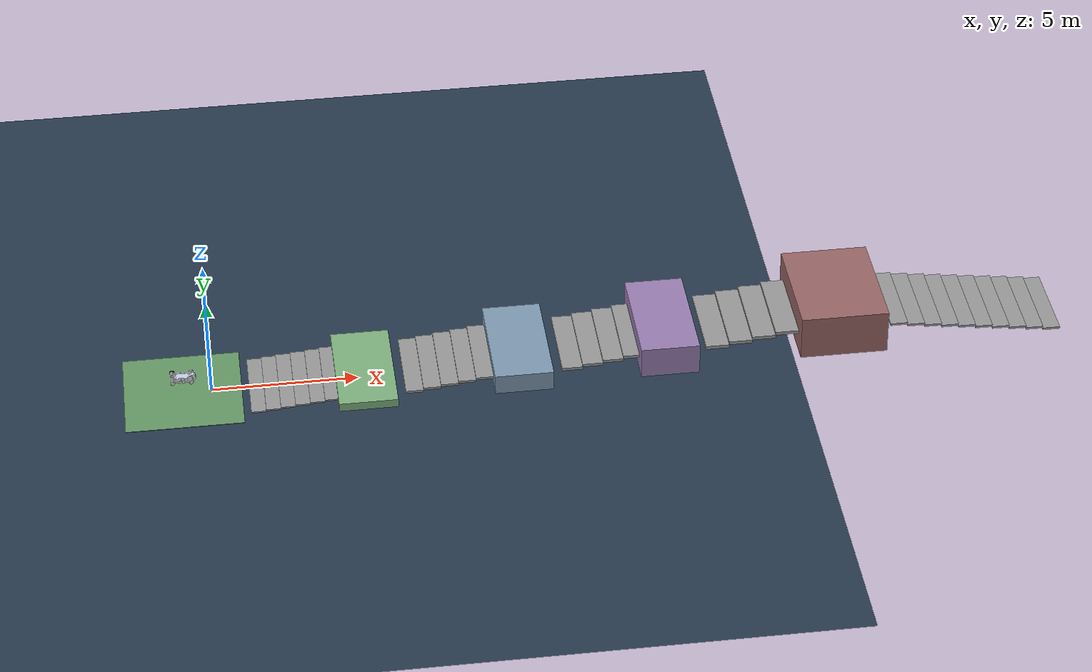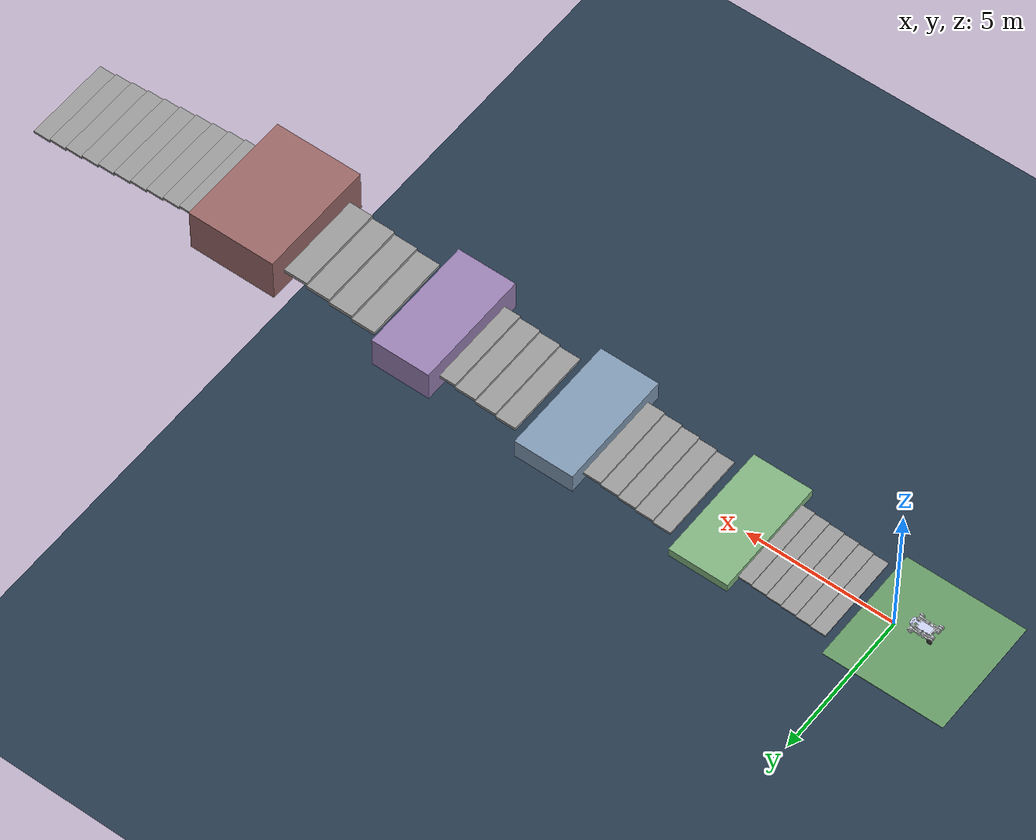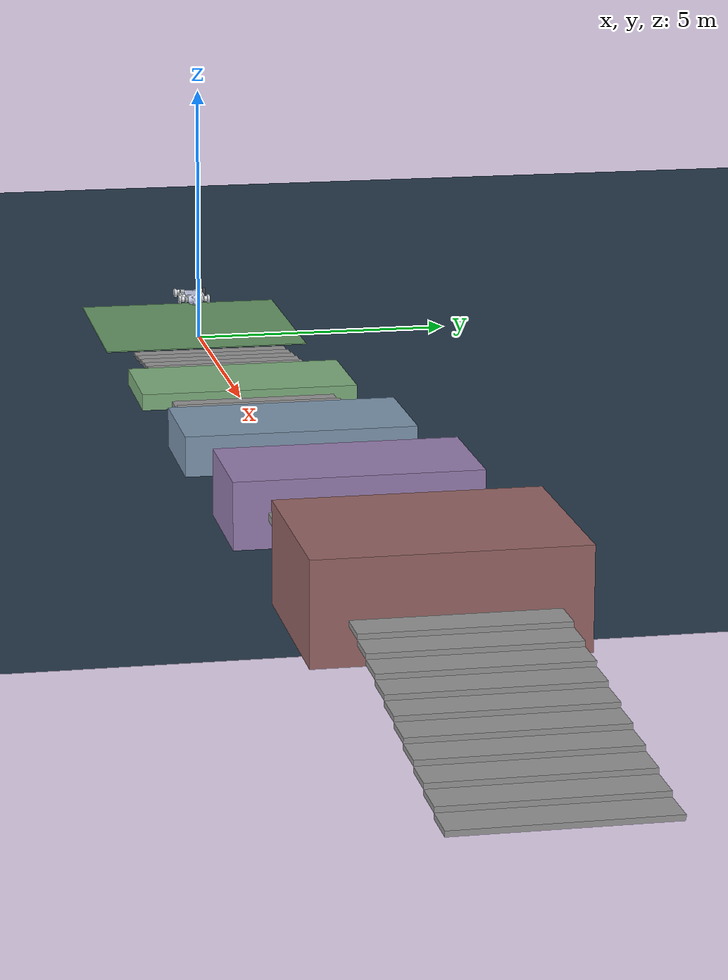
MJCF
<?xml version="1.0" encoding="UTF-8"?>
<mujoco model="thunder2_v1_complex_terrain">
  <compiler angle="radian" meshdir="../meshes/" eulerseq="zyx"/>
  <option timestep='0.001' iterations='50' solver='PGS' gravity='0 0 -9.81'>
    <flag frictionloss="enable" sensor="enable"/>
  </option>
  <visual>
    <quality shadowsize="4096"/>
    <map znear="0.05"/>
  </visual>

  <default>
    <joint limited="true"/>
    <motor ctrllimited="true"/>
    <geom condim="4" contype="1" conaffinity="15" solref="0.001 2" friction="0.9 0.2 0.2"/>
    <equality solref="0.001 2"/>
    <default class="leg_joint_param">
      <joint damping="0.01" frictionloss="0.01" armature="0.01"/>
    </default>
    <default class="terrain">
      <geom type="box" rgba="0.6 0.6 0.6 1" friction="0.9 0.2 0.2"/>
    </default>
  </default>

  <statistic meansize="0.164352" extent="2.5" center="0 0 0"/>
  <asset>
    <mesh name="base_link" file="base_link.STL"/>
    <mesh name="FR_hip" file="FR_hip.STL"/>
    <mesh name="FR_thigh" file="FR_thigh.STL"/>
    <mesh name="FR_calf" file="FR_calf.STL"/>
    <mesh name="FR_foot" file="FR_foot.STL"/>
    <mesh name="FL_hip" file="FL_hip.STL"/>
    <mesh name="FL_thigh" file="FL_thigh.STL"/>
    <mesh name="FL_calf" file="FL_calf.STL"/>
    <mesh name="FL_foot" file="FL_foot.STL"/>
    <mesh name="RR_hip" file="RR_hip.STL"/>
    <mesh name="RR_thigh" file="RR_thigh.STL"/>
    <mesh name="RR_calf" file="RR_calf.STL"/>
    <mesh name="RR_foot" file="RR_foot.STL"/>
    <mesh name="RL_hip" file="RL_hip.STL"/>
    <mesh name="RL_thigh" file="RL_thigh.STL"/>
    <mesh name="RL_calf" file="RL_calf.STL"/>
    <mesh name="RL_foot" file="RL_foot.STL"/>
    <material name="matplane" reflectance="0.3" texture="texplane" texrepeat="1 1" texuniform="true"/>
    <material name="matgeom" texture="texgeom" texuniform="true" rgba="0.8 0.6 .4 1"/>
    <material name="stairs" rgba="0.5 0.5 0.7 1"/>
    <material name="ramp" rgba="0.7 0.5 0.5 1"/>
    <material name="platform" rgba="0.5 0.7 0.5 1"/>
    <texture name="texplane" type="2d" builtin="checker" rgb1=".2 .3 .4" rgb2=".1 0.15 0.2" width="512" height="512" mark="cross" markrgb=".8 .8 .8"/>
    <texture name="texgeom" type="cube" builtin="flat" mark="cross" width="127" height="1278" rgb1="0.8 0.6 0.4" rgb2="0.8 0.6 0.4" markrgb="1 1 1" random="0.01"/>
    <texture type="skybox" builtin="gradient" rgb1="1 1 1" rgb2=".6 .8 1" width="256" height="256"/>
  </asset>

  <worldbody>
    <light directional="true" diffuse=".4 .4 .4" specular="0.1 0.1 0.1" pos="0 0 5.0" dir="0 0 -1" castshadow="false"/>
    <light directional="true" diffuse=".6 .6 .6" specular="0.2 0.2 0.2" pos="0 0 4" dir="0 0 -1"/>

    <!-- Main ground plane -->
    <geom name="ground" type="plane" size="20 20 1" pos="0 0 0" quat="1 0 0 0" material="matplane" condim="1" conaffinity='15'/>

    <!-- ===== STAIRS SECTION ===== -->

    <!-- Starting flat area (safe zone for robot initialization) -->
    <geom name="start_area" class="terrain" size="2.0 2.0 0.01" pos="-1.0 0 0.01" rgba="0.4 0.6 0.4 1"/>

    <!-- Set 1: Small height stairs (5cm per step) - 6 steps -->
    <!-- Total rise: 30cm, horizontal width: 3m (1.5m half-width) -->
    <geom name="stair_5cm_1" class="terrain" size="0.25 1.5 0.025" pos="1.5 0 0.025" material="stairs"/>
    <geom name="stair_5cm_2" class="terrain" size="0.25 1.5 0.025" pos="2.0 0 0.075" material="stairs"/>
    <geom name="stair_5cm_3" class="terrain" size="0.25 1.5 0.025" pos="2.5 0 0.125" material="stairs"/>
    <geom name="stair_5cm_4" class="terrain" size="0.25 1.5 0.025" pos="3.0 0 0.175" material="stairs"/>
    <geom name="stair_5cm_5" class="terrain" size="0.25 1.5 0.025" pos="3.5 0 0.225" material="stairs"/>
    <geom name="stair_5cm_6" class="terrain" size="0.25 1.5 0.025" pos="4.0 0 0.275" material="stairs"/>

    <!-- Platform after 5cm stairs -->
    <geom name="platform_5cm" class="terrain" size="1.0 2.0 0.15" pos="5.2 0 0.30" rgba="0.5 0.7 0.5 1"/>

    <!-- Set 2: Medium height stairs (8cm per step) - 5 steps -->
    <!-- Total rise: 40cm, horizontal width: 3m -->
    <geom name="stair_8cm_1" class="terrain" size="0.3 1.5 0.04" pos="6.8 0 0.34" material="stairs"/>
    <geom name="stair_8cm_2" class="terrain" size="0.3 1.5 0.04" pos="7.4 0 0.42" material="stairs"/>
    <geom name="stair_8cm_3" class="terrain" size="0.3 1.5 0.04" pos="8.0 0 0.50" material="stairs"/>
    <geom name="stair_8cm_4" class="terrain" size="0.3 1.5 0.04" pos="8.6 0 0.58" material="stairs"/>
    <geom name="stair_8cm_5" class="terrain" size="0.3 1.5 0.04" pos="9.2 0 0.66" material="stairs"/>

    <!-- Platform after 8cm stairs -->
    <geom name="platform_8cm" class="terrain" size="1.0 2.0 0.35" pos="10.5 0 0.70" rgba="0.5 0.6 0.7 1"/>

    <!-- Set 3: Large height stairs (10cm per step) - 4 steps -->
    <!-- Total rise: 40cm, horizontal width: 3m -->
    <geom name="stair_10cm_1" class="terrain" size="0.35 1.5 0.05" pos="12.2 0 0.75" material="stairs"/>
    <geom name="stair_10cm_2" class="terrain" size="0.35 1.5 0.05" pos="12.9 0 0.85" material="stairs"/>
    <geom name="stair_10cm_3" class="terrain" size="0.35 1.5 0.05" pos="13.6 0 0.95" material="stairs"/>
    <geom name="stair_10cm_4" class="terrain" size="0.35 1.5 0.05" pos="14.3 0 1.05" material="stairs"/>

    <!-- Platform after 10cm stairs -->
    <geom name="platform_10cm" class="terrain" size="1.0 2.0 0.55" pos="15.5 0 1.10" rgba="0.6 0.5 0.7 1"/>

    <!-- Set 4: Challenging stairs (12cm per step) - 4 steps -->
    <!-- Total rise: 48cm, horizontal width: 3m -->
    <geom name="stair_12cm_1" class="terrain" size="0.4 1.5 0.06" pos="17.2 0 1.16" material="stairs"/>
    <geom name="stair_12cm_2" class="terrain" size="0.4 1.5 0.06" pos="18.0 0 1.28" material="stairs"/>
    <geom name="stair_12cm_3" class="terrain" size="0.4 1.5 0.06" pos="18.8 0 1.40" material="stairs"/>
    <geom name="stair_12cm_4" class="terrain" size="0.4 1.5 0.06" pos="19.6 0 1.52" material="stairs"/>

    <!-- Final platform -->
    <geom name="platform_final" class="terrain" size="1.5 2.0 0.78" pos="21.5 0 1.58" rgba="0.6 0.4 0.4 1"/>

    <!-- Descending stairs (8cm per step) - back to ground -->
    <geom name="stair_down_1" class="terrain" size="0.3 1.5 0.04" pos="23.5 0 1.50" material="stairs"/>
    <geom name="stair_down_2" class="terrain" size="0.3 1.5 0.04" pos="24.1 0 1.42" material="stairs"/>
    <geom name="stair_down_3" class="terrain" size="0.3 1.5 0.04" pos="24.7 0 1.34" material="stairs"/>
    <geom name="stair_down_4" class="terrain" size="0.3 1.5 0.04" pos="25.3 0 1.26" material="stairs"/>
    <geom name="stair_down_5" class="terrain" size="0.3 1.5 0.04" pos="25.9 0 1.18" material="stairs"/>
    <geom name="stair_down_6" class="terrain" size="0.3 1.5 0.04" pos="26.5 0 1.10" material="stairs"/>
    <geom name="stair_down_7" class="terrain" size="0.3 1.5 0.04" pos="27.1 0 1.02" material="stairs"/>
    <geom name="stair_down_8" class="terrain" size="0.3 1.5 0.04" pos="27.7 0 0.94" material="stairs"/>
    <geom name="stair_down_9" class="terrain" size="0.3 1.5 0.04" pos="28.3 0 0.86" material="stairs"/>
    <geom name="stair_down_10" class="terrain" size="0.3 1.5 0.04" pos="28.9 0 0.78" material="stairs"/>

    <!-- ===== ROBOT SECTION ===== -->
    <!-- Robot spawns at safe location away from obstacles -->
    <body name="base_link" pos='-1.0 0 0.55'>
      <site name='imu' size='0.01' pos='0.0 0 0.0' quat='1 0 0 0'/>
      <inertial pos="-0.00018 0.00759 0.06615" mass="15.05964" fullinertia="0.16838 0.45784 0.44489 0.00036 0.00047 -0.00598"/>
      <joint name="floating_base_joint" type="free" limited='false'/>
      <geom type="mesh" contype="0" conaffinity="0" group="1" density="0" rgba="0.79216 0.81961 0.93333 1" mesh="base_link"/>
      <geom size="0.235 0.125 0.075" pos="0 0.00124 0.06891" type="box" rgba="0.89804 0.91765 0.92941 1"/>
    <body name="FR_hip" pos="0.2395 -0.064709 0.075">
      <inertial pos="0.07152 -0.05064 0.00083" quat="0.626329 0.617527 0.336122 0.336742" mass="1.66357" diaginertia="0.0168527 0.0160417 0.00261558"/>
      <joint name="FR_hip_joint" pos="0 0 0" axis="-1 0 0" limited="true" range="-0.4 0.4" actuatorfrcrange="-120 120" class="leg_joint_param"/>
      <geom type="mesh" contype="0" conaffinity="0" group="1" density="0" rgba="0.89804 0.91765 0.92941 1" mesh="FR_hip"/>
      <geom size="0.06 0.024" pos="0.07752 -0.05564 0.00083" quat="0.707105 0.707108 0 0" type="cylinder" rgba="0.89804 0.91765 0.92941 1"/>
      <body name="FR_thigh" pos="0.078 -0.0795 0">
        <inertial pos="-0.19525 -0.02859 -0.01001" quat="0.479687 0.453781 0.518308 0.543452" mass="2.40998" diaginertia="0.122369 0.120523 0.00342805"/>
        <joint name="FR_thigh_joint" pos="0 0 0" axis="0 1 0" limited="true" range="-3.14 0" actuatorfrcrange="-120 120" class="leg_joint_param"/>
        <geom type="mesh" contype="0" conaffinity="0" group="1" density="0" rgba="0.89804 0.91765 0.92941 1" mesh="FR_thigh"/>
        <geom size="0.064 0.015" pos="0 -0.0195 0" quat="0.707105 0.707108 0 0" type="cylinder" rgba="0.89804 0.91765 0.92941 1"/>
        <geom size="0.09 0.015 0.03" pos="-0.125 -0.02059 -0.01001" quat="0.997888 0 -0.0649542 0" type="box" rgba="0.89804 0.91765 0.92941 1"/>
        <geom size="0.0655 0.028" pos="-0.2485 -0.032 -0.0135" quat="0.707105 0.707108 0 0" type="cylinder" rgba="0.89804 0.91765 0.92941 1"/>
        <body name="FR_calf" pos="-0.24964 -0.057 -0.0135">
          <inertial pos="0.17734 -0.02903 0.0121" quat="0.546491 0.517099 0.44598 0.484828" mass="1.89382" diaginertia="0.0857485 0.0849149 0.00239654"/>
          <joint name="FR_calf_joint" pos="0 0 0" axis="0 1 0" limited="true" range="0 3.14" actuatorfrcrange="-120 120" class="leg_joint_param"/>
          <geom type="mesh" contype="0" conaffinity="0" group="1" density="0" rgba="0.89804 0.91765 0.92941 1" mesh="FR_calf"/>
          <geom size="0.0635 0.015" pos="0 -0.02653 0" quat="0.707105 0.707108 0 0" type="cylinder" rgba="0.89804 0.91765 0.92941 1"/>
          <geom size="0.09 0.02 0.0225" pos="0.11 -0.02903 0.0121" type="box" rgba="0.89804 0.91765 0.92941 1"/>
          <geom size="0.06 0.0275" pos="0.249 -0.02903 0.0181" quat="0.707105 0.707108 0 0" type="cylinder" rgba="0.89804 0.91765 0.92941 1"/>
          <body name="FR_foot" pos="0.24942 -0.061 0.017">
            <inertial pos="0 -0.02931 0" quat="0.707107 0 0 0.707107" mass="0.59453" diaginertia="0.00217 0.00169 0.00169"/>
            <joint name="FR_foot_joint" type="hinge" pos="0 0 0" axis="0 1 0" limited="false" actuatorfrcrange="-60 60" class="leg_joint_param"/>
            <geom type="mesh" contype="0" conaffinity="0" group="1" density="0" rgba="0.89804 0.91765 0.92941 1" mesh="FR_foot"/>
            <geom size="0.085 0.02" pos="0 -0.02931 0" quat="0.707105 0.707108 0 0" type="cylinder" rgba="0.89804 0.91765 0.92941 1"/>
          </body>
        </body>
      </body>
    </body>
    <body name="FL_hip" pos="0.2395 0.065291 0.075">
      <inertial pos="0.07132 0.05064 0.00088" quat="0.34195 0.329 0.622752 0.622101" mass="1.66357" diaginertia="0.0168353 0.0159606 0.00259407"/>
      <joint name="FL_hip_joint" pos="0 0 0" axis="-1 0 0" limited="true" range="-0.4 0.4" actuatorfrcrange="-120 120" class="leg_joint_param"/>
      <geom type="mesh" contype="0" conaffinity="0" group="1" density="0" rgba="0.89804 0.91765 0.92941 1" mesh="FL_hip"/>
      <geom size="0.06 0.024" pos="0.07752 0.05564 0.00083" quat="0.707105 0.707108 0 0" type="cylinder" rgba="0.89804 0.91765 0.92941 1"/>
      <body name="FL_thigh" pos="0.078 0.0795 0">
        <inertial pos="-0.19489 0.02859 -0.01047" quat="0.541158 0.520466 0.449868 0.483613" mass="2.40998" diaginertia="0.121967 0.120083 0.00348012"/>
        <joint name="FL_thigh_joint" pos="0 0 0" axis="0 -1 0" limited="true" range="0 3.14" actuatorfrcrange="-120 120" class="leg_joint_param"/>
        <geom type="mesh" contype="0" conaffinity="0" group="1" density="0" rgba="0.89804 0.91765 0.92941 1" mesh="FL_thigh"/>
        <geom size="0.064 0.015" pos="0 0.0195 0" quat="0.707105 0.707108 0 0" type="cylinder" rgba="0.89804 0.91765 0.92941 1"/>
        <geom size="0.09 0.015 0.03" pos="-0.125 0.02059 -0.01001" quat="0.997888 0 -0.0649542 0" type="box" rgba="0.89804 0.91765 0.92941 1"/>
        <geom size="0.0655 0.028" pos="-0.2485 0.032 -0.0135" quat="0.707105 0.707108 0 0" type="cylinder" rgba="0.89804 0.91765 0.92941 1"/>
        <body name="FL_calf" pos="-0.24964 0.057 -0.0135">
          <inertial pos="0.1774 0.02903 0.0121" quat="0.484577 0.446264 0.516815 0.54675" mass="1.89382" diaginertia="0.0858074 0.0849661 0.00239649"/>
          <joint name="FL_calf_joint" pos="0 0 0" axis="0 -1 0" limited="true" range="-3.14 0" actuatorfrcrange="-120 120" class="leg_joint_param"/>
          <geom type="mesh" contype="0" conaffinity="0" group="1" density="0" rgba="0.89804 0.91765 0.92941 1" mesh="FL_calf"/>
          <geom size="0.0635 0.015" pos="0 0.02653 0" quat="0.707105 0.707108 0 0" type="cylinder" rgba="0.89804 0.91765 0.92941 1"/>
          <geom size="0.09 0.02 0.0225" pos="0.11 0.02903 0.0121" type="box" rgba="0.89804 0.91765 0.92941 1"/>
          <geom size="0.06 0.0275" pos="0.249 0.02903 0.0181" quat="0.707105 0.707108 0 0" type="cylinder" rgba="0.89804 0.91765 0.92941 1"/>
          <body name="FL_foot" pos="0.24942 0.061 0.017">
            <inertial pos="0 0.02893 0" quat="0.707107 0 0 0.707107" mass="0.59453" diaginertia="0.00217 0.00168 0.00168"/>
            <joint name="FL_foot_joint" type="hinge" pos="0 0 0" axis="0 -1 0" limited="false" actuatorfrcrange="-60 60" class="leg_joint_param"/>
            <geom type="mesh" contype="0" conaffinity="0" group="1" density="0" rgba="0.89804 0.91765 0.92941 1" mesh="FL_foot"/>
            <geom size="0.085 0.02" pos="0 0.02893 0" quat="0.707105 0.707108 0 0" type="cylinder" rgba="0.89804 0.91765 0.92941 1"/>
          </body>
        </body>
      </body>
    </body>
    <body name="RR_hip" pos="-0.2395 -0.064709 0.075">
      <inertial pos="-0.07082 -0.05064 0.00079" quat="0.330131 0.339493 0.623716 0.621881" mass="1.66357" diaginertia="0.0166987 0.0158609 0.00257037"/>
      <joint name="RR_hip_joint" pos="0 0 0" axis="1 0 0" limited="true" range="-0.4 0.4" actuatorfrcrange="-120 120" class="leg_joint_param"/>
      <geom type="mesh" contype="0" conaffinity="0" group="1" density="0" rgba="0.89804 0.91765 0.92941 1" mesh="RR_hip"/>
      <geom size="0.06 0.024" pos="-0.07752 -0.05564 0.00083" quat="0.707105 0.707108 0 0" type="cylinder" rgba="0.89804 0.91765 0.92941 1"/>
      <body name="RR_thigh" pos="-0.078 -0.0795 0">
        <inertial pos="0.19489 -0.02859 -0.01049" quat="0.520292 0.541342 0.483451 0.450023" mass="2.40998" diaginertia="0.121967 0.120084 0.00347906"/>
        <joint name="RR_thigh_joint" pos="0 0 0" axis="0 1 0" limited="true" range="0 3.14" actuatorfrcrange="-120 120" class="leg_joint_param"/>
        <geom type="mesh" contype="0" conaffinity="0" group="1" density="0" rgba="0.89804 0.91765 0.92941 1" mesh="RR_thigh"/>
        <geom size="0.064 0.015" pos="0 -0.0195 0" quat="0.707105 0.707108 0 0" type="cylinder" rgba="0.89804 0.91765 0.92941 1"/>
        <geom size="0.09 0.015 0.03" pos="0.125 -0.02059 -0.01001" quat="0.997888 0 0.0649542 0" type="box" rgba="0.89804 0.91765 0.92941 1"/>
        <geom size="0.0655 0.028" pos="0.2485 -0.032 -0.0135" quat="0.707105 0.707108 0 0" type="cylinder" rgba="0.89804 0.91765 0.92941 1"/>
        <body name="RR_calf" pos="0.24964 -0.057 -0.0135">
          <inertial pos="-0.1774 -0.02903 0.0121" quat="0.446264 0.484577 0.54675 0.516815" mass="1.89382" diaginertia="0.0858074 0.0849661 0.00239649"/>
          <!-- Joint limits synchronized with thunder_nohead_pose2.urdf: lower=-3.14, upper=3.14 -->
          <joint name="RR_calf_joint" pos="0 0 0" axis="0 1 0" limited="true" range="-3.14 3.14" actuatorfrcrange="-120 120" class="leg_joint_param"/>
          <geom type="mesh" contype="0" conaffinity="0" group="1" density="0" rgba="0.89804 0.91765 0.92941 1" mesh="RR_calf"/>
          <geom size="0.0635 0.015" pos="0 -0.02653 0" quat="0.707105 0.707108 0 0" type="cylinder" rgba="0.89804 0.91765 0.92941 1"/>
          <geom size="0.09 0.02 0.0225" pos="-0.11 -0.02903 0.0121" type="box" rgba="0.89804 0.91765 0.92941 1"/>
          <geom size="0.06 0.0275" pos="-0.249 -0.02903 0.0181" quat="0.707105 0.707108 0 0" type="cylinder" rgba="0.89804 0.91765 0.92941 1"/>
          <body name="RR_foot" pos="-0.24942 -0.061 0.017">
            <inertial pos="0 -0.02931 0" quat="0.707107 0 0 0.707107" mass="0.59453" diaginertia="0.00217 0.00169 0.00169"/>
            <joint name="RR_foot_joint" type="hinge" pos="0 0 0" axis="0 1 0" limited="false" actuatorfrcrange="-60 60" class="leg_joint_param"/>
            <geom type="mesh" contype="0" conaffinity="0" group="1" density="0" rgba="0.89804 0.91765 0.92941 1" mesh="RR_foot"/>
            <geom size="0.085 0.02" pos="0 -0.02931 0" quat="0.707105 0.707108 0 0" type="cylinder" rgba="0.89804 0.91765 0.92941 1"/>
          </body>
        </body>
      </body>
    </body>
    <body name="RL_hip" pos="-0.2395 0.065291 0.075">
      <inertial pos="-0.07136 0.05064 -0.00087" quat="0.622182 0.622765 0.328978 0.341799" mass="1.66357" diaginertia="0.0168545 0.0159706 0.00259488"/>
      <joint name="RL_hip_joint" pos="0 0 0" axis="1 0 0" limited="true" range="-0.4 0.4" actuatorfrcrange="-120 120" class="leg_joint_param"/>
      <geom type="mesh" contype="0" conaffinity="0" group="1" density="0" rgba="0.89804 0.91765 0.92941 1" mesh="RL_hip"/>
      <geom size="0.06 0.024" pos="-0.07752 0.05564 0.00083" quat="0.707105 0.707108 0 0" type="cylinder" rgba="0.89804 0.91765 0.92941 1"/>
      <body name="RL_thigh" pos="-0.078 0.0795 0">
        <inertial pos="0.19525 0.02859 -0.01001" quat="0.453781 0.479687 0.543452 0.518308" mass="2.40998" diaginertia="0.122369 0.120523 0.00342805"/>
        <joint name="RL_thigh_joint" pos="0 0 0" axis="0 -1 0" limited="true" range="-3.14 0" actuatorfrcrange="-120 120" class="leg_joint_param"/>
        <geom type="mesh" contype="0" conaffinity="0" group="1" density="0" rgba="0.89804 0.91765 0.92941 1" mesh="RL_thigh"/>
        <geom size="0.064 0.015" pos="0 0.0195 0" quat="0.707105 0.707108 0 0" type="cylinder" rgba="0.89804 0.91765 0.92941 1"/>
        <geom size="0.09 0.015 0.03" pos="0.125 0.02059 -0.01001" quat="0.997888 0 0.0649542 0" type="box" rgba="0.89804 0.91765 0.92941 1"/>
        <geom size="0.0655 0.028" pos="0.2485 0.032 -0.0135" quat="0.707105 0.707108 0 0" type="cylinder" rgba="0.89804 0.91765 0.92941 1"/>
        <body name="RL_calf" pos="0.24964 0.057 -0.0135">
          <inertial pos="-0.1774 0.02903 0.01208" quat="0.514581 0.549163 0.481766 0.448918" mass="1.89382" diaginertia="0.0858073 0.0849747 0.00239804"/>
          <!-- Joint limits synchronized with thunder_nohead_pose2.urdf: lower=-3.14, upper=3.14 -->
          <joint name="RL_calf_joint" pos="0 0 0" axis="0 -1 0" limited="true" range="-3.14 3.14" actuatorfrcrange="-120 120" class="leg_joint_param"/>
          <geom type="mesh" contype="0" conaffinity="0" group="1" density="0" rgba="0.89804 0.91765 0.92941 1" mesh="RL_calf"/>
          <geom size="0.0635 0.015" pos="0 0.02653 0" quat="0.707105 0.707108 0 0" type="cylinder" rgba="0.89804 0.91765 0.92941 1"/>
          <geom size="0.09 0.02 0.0225" pos="-0.11 0.02903 0.0121" type="box" rgba="0.89804 0.91765 0.92941 1"/>
          <geom size="0.06 0.0275" pos="-0.249 0.02903 0.0181" quat="0.707105 0.707108 0 0" type="cylinder" rgba="0.89804 0.91765 0.92941 1"/>
          <body name="RL_foot" pos="-0.24942 0.061 0.017">
            <inertial pos="0 0.02931 0" quat="0.707107 0 0 0.707107" mass="0.59453" diaginertia="0.00217 0.00169 0.00169"/>
            <joint name="RL_foot_joint" type="hinge" pos="0 0 0" axis="0 -1 0" limited="false" actuatorfrcrange="-60 60" class="leg_joint_param"/>
            <geom type="mesh" contype="0" conaffinity="0" group="1" density="0" rgba="0.29804 0.29804 0.29804 1" mesh="RL_foot"/>
            <geom size="0.085 0.02" pos="0 0.02931 0" quat="0.707105 0.707108 0 0" type="cylinder" rgba="0.29804 0.29804 0.29804 1"/>
          </body>
        </body>
      </body>
    </body>
    </body>
  </worldbody>

  <actuator>

    <!-- FR leg joints - 120Nm -->
    <motor name="FR_hip_joint" joint="FR_hip_joint" gear="1" ctrllimited="true" ctrlrange="-120 120"/>
    <motor name="FR_thigh_joint" joint="FR_thigh_joint" gear="1" ctrllimited="true" ctrlrange="-120 120"/>
    <motor name="FR_calf_joint" joint="FR_calf_joint" gear="1" ctrllimited="true" ctrlrange="-120 120"/>

    <!-- FL leg joints - 120Nm -->
    <motor name="FL_hip_joint" joint="FL_hip_joint" gear="1" ctrllimited="true" ctrlrange="-120 120"/>
    <motor name="FL_thigh_joint" joint="FL_thigh_joint" gear="1" ctrllimited="true" ctrlrange="-120 120"/>
    <motor name="FL_calf_joint" joint="FL_calf_joint" gear="1" ctrllimited="true" ctrlrange="-120 120"/>

    <!-- RR leg joints - 120Nm -->
    <motor name="RR_hip_joint" joint="RR_hip_joint" gear="1" ctrllimited="true" ctrlrange="-120 120"/>
    <motor name="RR_thigh_joint" joint="RR_thigh_joint" gear="1" ctrllimited="true" ctrlrange="-120 120"/>
    <motor name="RR_calf_joint" joint="RR_calf_joint" gear="1" ctrllimited="true" ctrlrange="-120 120"/>

    <!-- RL leg joints - 120Nm -->
    <motor name="RL_hip_joint" joint="RL_hip_joint" gear="1" ctrllimited="true" ctrlrange="-120 120"/>
    <motor name="RL_thigh_joint" joint="RL_thigh_joint" gear="1" ctrllimited="true" ctrlrange="-120 120"/>
    <motor name="RL_calf_joint" joint="RL_calf_joint" gear="1" ctrllimited="true" ctrlrange="-120 120"/>

    <!-- Wheel joints - 60Nm -->
    <motor name="FR_foot_joint" joint="FR_foot_joint" gear="1" ctrllimited="true" ctrlrange="-60 60"/>
    <motor name="FL_foot_joint" joint="FL_foot_joint" gear="1" ctrllimited="true" ctrlrange="-60 60"/>
    <motor name="RR_foot_joint" joint="RR_foot_joint" gear="1" ctrllimited="true" ctrlrange="-60 60"/>
    <motor name="RL_foot_joint" joint="RL_foot_joint" gear="1" ctrllimited="true" ctrlrange="-60 60"/>
  </actuator>

  <sensor>
    <framequat     name='orientation' objtype='site' noise='0.001' objname='imu'/>
    <framepos     name='position' objtype='site' noise='0.001' objname='imu'/>
    <gyro          name='angular-velocity'    site='imu' noise='0.005' cutoff='34.9'/>
    <velocimeter   name='linear-velocity'     site='imu' noise='0.001' cutoff='30'/>
    <accelerometer name='linear-acceleration' site='imu' noise='0.005' cutoff='157'/>
    <magnetometer  name='magnetometer'        site='imu'/>
  </sensor>
</mujoco>
